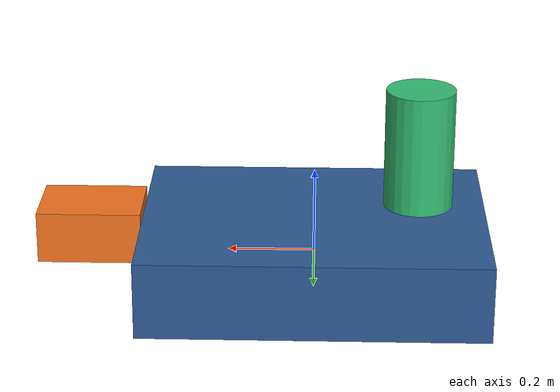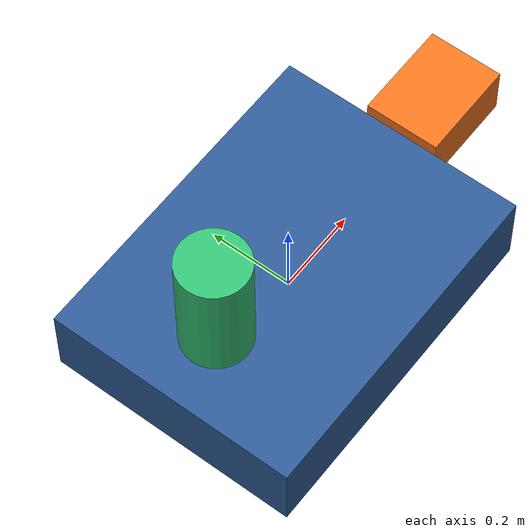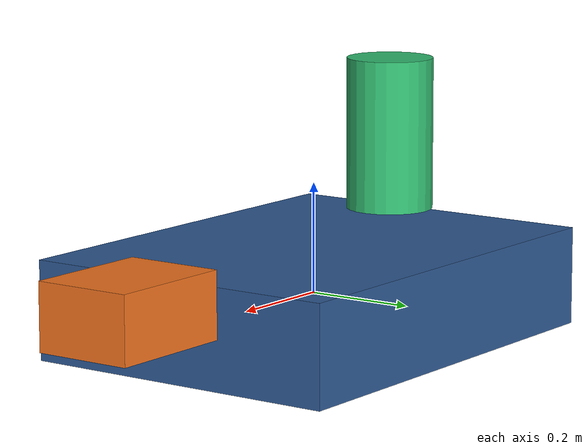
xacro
<?xml version="1.0"?>
<robot xmlns:xacro="http://www.ros.org/wiki/xacro" name="ed_uav">
  <xacro:arg name="fcu_xyz" default="0 0 0"/>
  <xacro:arg name="fcu_rpy" default="0 0 0"/>
  <xacro:arg name="lidar_xyz" default="0 0 0"/>
  <xacro:arg name="lidar_rpy" default="0 0 0"/>
  <xacro:arg name="camera_narrow_xyz" default="0 0 0"/>
  <xacro:arg name="camera_narrow_rpy" default="0 0 0"/>
  <xacro:arg name="camera_wide_xyz" default="0 0 0"/>
  <xacro:arg name="camera_wide_rpy" default="0 0 0"/>
  <xacro:arg name="rangefinder_xyz" default="0 0 0"/>
  <xacro:arg name="rangefinder_rpy" default="0 0 0"/>

  <!-- Illustrative visuals only; dimensions are synthetic, not measured hardware data. -->
  <link name="base_link">
    <visual name="illustrative_base_body">
      <geometry>
        <box size="0.8 0.6 0.18"/>
      </geometry>
      <material name="inline_body_blue">
        <color rgba="0.18 0.35 0.58 1.0"/>
      </material>
    </visual>
  </link>

  <!-- Orientation aids are illustrative geometry, not sensors or measured calibration. -->
  <link name="illustrative_forward_link">
    <visual name="illustrative_forward_marker">
      <geometry>
        <box size="0.24 0.18 0.12"/>
      </geometry>
      <material name="inline_forward_orange">
        <color rgba="0.95 0.45 0.12 1.0"/>
      </material>
    </visual>
  </link>
  <joint name="base_to_illustrative_forward" type="fixed">
    <parent link="base_link"/>
    <child link="illustrative_forward_link"/>
    <origin xyz="0.52 0 0.06" rpy="0 0 0"/>
  </joint>

  <link name="illustrative_up_link">
    <visual name="illustrative_up_marker">
      <geometry>
        <cylinder radius="0.08" length="0.28"/>
      </geometry>
      <material name="inline_up_green">
        <color rgba="0.20 0.75 0.45 1.0"/>
      </material>
    </visual>
  </link>
  <joint name="base_to_illustrative_up" type="fixed">
    <parent link="base_link"/>
    <child link="illustrative_up_link"/>
    <origin xyz="-0.24 0 0.26" rpy="0 0 0"/>
  </joint>

  <link name="fcu_link"/>
  <joint name="base_to_fcu" type="fixed">
    <parent link="base_link"/>
    <child link="fcu_link"/>
    <origin xyz="$(arg fcu_xyz)" rpy="$(arg fcu_rpy)"/>
  </joint>

  <link name="lidar_link"/>
  <joint name="base_to_lidar" type="fixed">
    <parent link="base_link"/>
    <child link="lidar_link"/>
    <origin xyz="$(arg lidar_xyz)" rpy="$(arg lidar_rpy)"/>
  </joint>

  <link name="camera_narrow_optical_frame"/>
  <joint name="base_to_camera_narrow" type="fixed">
    <parent link="base_link"/>
    <child link="camera_narrow_optical_frame"/>
    <origin xyz="$(arg camera_narrow_xyz)" rpy="$(arg camera_narrow_rpy)"/>
  </joint>

  <link name="camera_wide_optical_frame"/>
  <joint name="base_to_camera_wide" type="fixed">
    <parent link="base_link"/>
    <child link="camera_wide_optical_frame"/>
    <origin xyz="$(arg camera_wide_xyz)" rpy="$(arg camera_wide_rpy)"/>
  </joint>

  <link name="rangefinder_link"/>
  <joint name="base_to_rangefinder" type="fixed">
    <parent link="base_link"/>
    <child link="rangefinder_link"/>
    <origin xyz="$(arg rangefinder_xyz)" rpy="$(arg rangefinder_rpy)"/>
  </joint>
</robot>
